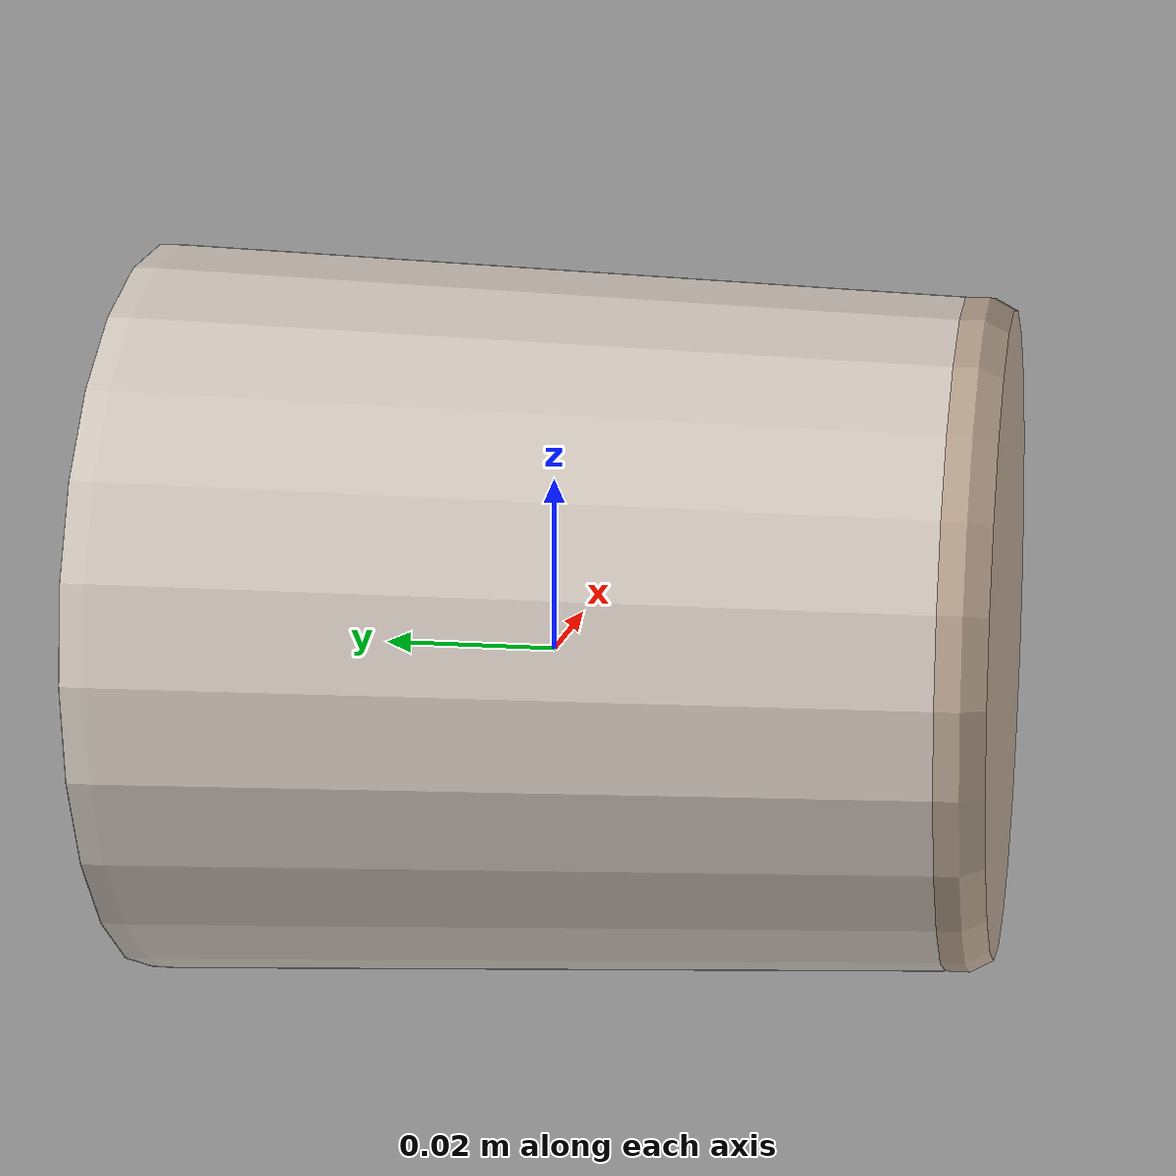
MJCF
<mujoco model="Mug_2">
  <compiler autolimits="true" boundmass="0" angle="radian"/>
  <default>
    <default class="/">
      <default class="__VISUAL_MJT__">
        <geom contype="0" conaffinity="0" group="0"/>
      </default>
      <default class="__STRUCTURAL_MJT__">
        <geom contype="8" conaffinity="15" group="4" friction="0.90000000000000002 0.90000000000000002 0.001"
          solref="0.025000000000000001 1" solimp="0.998 0.998 0.001"/>
      </default>
      <default class="__DYNAMIC_MJT__">
        <geom contype="1" conaffinity="15" group="4" friction="0.90000000000000002 0.90000000000000002 0.001"
          solref="0.025000000000000001 1" solimp="0.998 0.998 0.001"/>
      </default>
    </default>
  </default>
  <asset>
    <material name="material_Mug_Decals_Off_Mat" class="/" specular="0.5" shininess="0.5" rgba="1 1 1 0.5"/>
    <material name="material_Porcelain_Sand_Mat" class="/" specular="0.5" shininess="0.5"
      rgba="0.72549019999999997 0.64313730000000002 0.56470589999999998 1"/>
    <mesh name="Mug_2_mug_2_0" class="/" file="Mug_2_mug_2/Mug_2_mug_2_0.obj" scale="1 1 1"/>
    <mesh name="Mug_2_mug_2_1" class="/" file="Mug_2_mug_2/Mug_2_mug_2_1.obj" scale="1 1 1"/>
  </asset>
  <worldbody>
    <body name="Mug_2">
      <joint name="Mug_2_free" class="/" type="free" pos="0 0 0" axis="0 0 1" stiffness="0" range="0 0" armature="0"
        damping="0.10000000000000001" frictionloss="0"/>
      <body name="Mug_2_mug_2" pos="0.015469999999999999 -0.051819999999999998 0.00014999999999999999" quat="1 0 0 0">
        <geom name="Mug_2_mug_2_0" class="__VISUAL_MJT__" type="mesh" material="material_Mug_Decals_Off_Mat"
          shellinertia="false" mesh="Mug_2_mug_2_0"/>
        <geom name="Mug_2_mug_2_1" class="__VISUAL_MJT__" type="mesh" material="material_Porcelain_Sand_Mat"
          shellinertia="false" mesh="Mug_2_mug_2_1"/>
        <geom name="Mug_2_mug_2_PrimitiveCollider_0" class="__DYNAMIC_MJT__" type="box"
          size="0.0362415611743927 0.0060202032327651978 0.036547541618347168" rgba="0 1 0 1"
          pos="0.0042185783386230469 0.0060202032327651978 -2.4318695068359375e-05" quat="0 1 0 0"/>
        <geom name="Mug_2_mug_2_PrimitiveCollider_1" class="__DYNAMIC_MJT__" type="box"
          size="0.017214732244610786 0.051817417144775391 0.0041092648170888424" rgba="0 1 0 1"
          pos="0.0042185783386230469 0.051817417144775391 -0.038968086242675781" quat="0 1 0 0"/>
        <geom name="Mug_2_mug_2_PrimitiveCollider_2" class="__DYNAMIC_MJT__" type="box"
          size="0.017214741557836533 0.051817417144775391 0.0041092648170888424" rgba="0 1 0 1"
          pos="0.0042185783386230469 0.051817417144775391 0.038668155670166016" quat="0 1 0 0"/>
        <geom name="Mug_2_mug_2_PrimitiveCollider_3" class="__DYNAMIC_MJT__" type="box"
          size="0.017054982483386993 0.051817417144775391 0.0041477568447589874" rgba="0 1 0 1"
          pos="-0.034963130950927734 0.051817417144775391 -0.00015020370483398438"
          quat="0 0.7071065129656019 0 -0.70710704940739144"/>
        <geom name="Mug_2_mug_2_PrimitiveCollider_4" class="__DYNAMIC_MJT__" type="box"
          size="0.017054982483386993 0.051817417144775391 0.0041477568447589874" rgba="0 1 0 1"
          pos="0.043400287628173828 0.051817417144775391 -0.00015020370483398438"
          quat="0 0.7071065129656019 0 -0.70710704940739144"/>
        <geom name="Mug_2_mug_2_PrimitiveCollider_5" class="__DYNAMIC_MJT__" type="box"
          size="0.017134862020611763 0.051817417144775391 0.0041285110637545586" rgba="0 1 0 1"
          pos="-0.023487091064453125 0.051817417144775391 0.0272979736328125"
          quat="0 0.38268380990050288 0 -0.92387937613090809"/>
        <geom name="Mug_2_mug_2_PrimitiveCollider_6" class="__DYNAMIC_MJT__" type="box"
          size="0.017134862020611763 0.051817417144775391 0.0041285110637545586" rgba="0 1 0 1"
          pos="0.031924247741699219 0.051817417144775391 -0.027598381042480469"
          quat="0 0.38268380990050288 0 -0.92387937613090809"/>
        <geom name="Mug_2_mug_2_PrimitiveCollider_7" class="__DYNAMIC_MJT__" type="box"
          size="0.01713486947119236 0.051817417144775391 0.0041285129263997078" rgba="0 1 0 1"
          pos="0.031923294067382812 0.051817417144775391 0.027298450469970703"
          quat="0 -0.38268262379806006 0 -0.92387986743030204"/>
        <geom name="Mug_2_mug_2_PrimitiveCollider_8" class="__DYNAMIC_MJT__" type="box"
          size="0.01713486947119236 0.051817417144775391 0.0041285129263997078" rgba="0 1 0 1"
          pos="-0.023486137390136719 0.051817417144775391 -0.027598857879638672"
          quat="0 -0.38268262379806006 0 -0.92387986743030204"/>
        <geom name="Mug_2_mug_2_PrimitiveCollider_9" class="__DYNAMIC_MJT__" type="box"
          size="0.0082598188892006874 0.035215407609939575 0.013402113690972328" rgba="0 1 0 1"
          pos="0.056638658046722412 0.064479976892471313 -0.00015021488070487976"
          quat="0 0.7071065129656019 0 -0.70710704940739144"/>
      </body>
    </body>
  </worldbody>
</mujoco>
